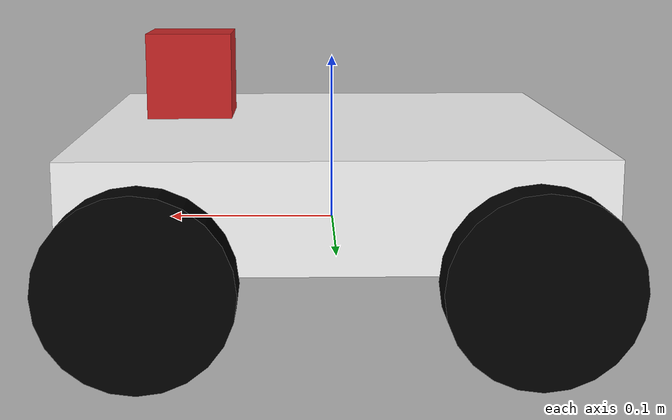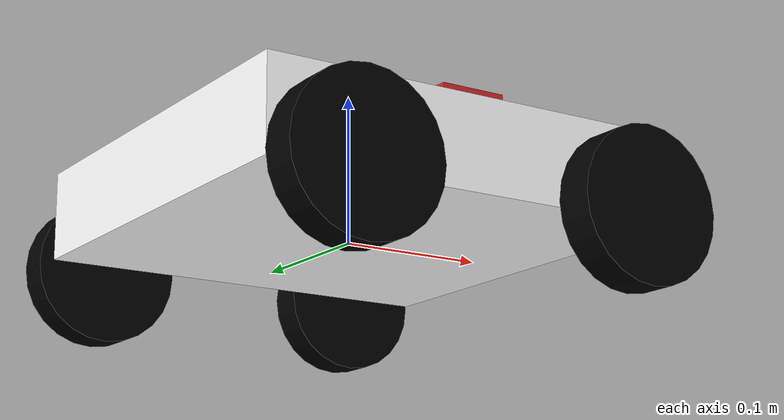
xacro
<?xml version="1.0"?>
<robot name="tetrix" xmlns:xacro="http://www.ros.org/wiki/xacro">
    <!-- Import all Gazebo-customization elements, including Gazebo colors -->
    <xacro:include filename="$(find description)/urdf/robot_gazebo.urdf" />
    <!-- Size of square 'camera' box -->
    <xacro:property name="camera_link" value="0.05" />

    <link name="base_link">
        <visual>
            <geometry>
                <box size="0.288 0.288 0.06"/>
            </geometry>
            <origin xyz="0.0 0.0 0.03" rpy="0.0 0.0 0.0"/>
            <material name="white">
                <color rgba="1.0 1.0 1.0 1.0"/>
            </material>
        </visual>
        <collision>
            <geometry>
                <cylinder radius="0.05" length="0.025"/>
            </geometry>
            <origin xyz="0.0 0.0 0.0" rpy="1.5708 0.0 0.0"/>
        </collision>
        <inertial>
            <mass value="30"/>
            <!--Calculate inertia matrix -->
            <inertia ixx="4624.522752" ixy="-76.634491e-6" ixz="-0.210200359375" iyy="8562.169856" iyz="-83.146664" izz="4164.323584"/>
        </inertial>
    </link>

    <link name="left_front_wheel">
        <visual>
            <geometry>
                <cylinder radius="0.05" length="0.025"/>
            </geometry>
            <origin xyz="0.0 0.0 0.0" rpy="1.5708 0.0 0.0"/>
            <material name="black">
                <color rgba="0.0 0.0 0.0 1.0"/>
            </material>
        </visual>
        <collision>
            <geometry>
                <cylinder radius="0.05" length="0.025"/>
            </geometry>
            <origin xyz="0.0 0.0 0.0" rpy="1.5708 0.0 0.0"/>
        </collision>
        <inertial>
            <mass value="10"/>
            <!--Calculate inertia matrix -->
            <inertia ixx="173.190752" ixy="0.001082074829" ixz="-0.000100570656" iyy="95.845712" iyz="-0.006255677734" izz="95.856976"/>
        </inertial>
    </link>

    <link name="right_front_wheel">
        <visual>
            <geometry>
                <cylinder radius="0.05" length="0.025"/>
            </geometry>
            <origin xyz="0.0 0.0 0.0" rpy="1.5708 0.0 0.0"/>
            <material name="black">
                <color rgba="0.0 0.0 0.0 1.0"/>
            </material>
        </visual>
        <collision>
            <geometry>
                <cylinder radius="0.05" length="0.025"/>
            </geometry>
            <origin xyz="0.0 0.0 0.0" rpy="1.5708 0.0 0.0"/>
        </collision>
        <inertial>
            <mass value="10"/>
            <!--Calculate inertia matrix -->
            <inertia ixx="173.190752" ixy="0.001082074829" ixz="-0.000100570656" iyy="95.845712" iyz="-0.006255677734" izz="95.856976"/>
        </inertial>
    </link>

    <link name="right_back_wheel">
        <visual>
            <geometry>
                <cylinder radius="0.05" length="0.025"/>
            </geometry>
            <origin xyz="0.0 0.0 0.0" rpy="1.5708 0.0 0.0"/>
            <material name="black">
                <color rgba="0.0 0.0 0.0 1.0"/>
            </material>
        </visual>
        <collision>
            <geometry>
                <cylinder radius="0.05" length="0.025"/>
            </geometry>
            <origin xyz="0.0 0.0 0.0" rpy="1.5708 0.0 0.0"/>
        </collision>
        <inertial>
            <mass value="10"/>
            <!--Calculate inertia matrix -->
            <inertia ixx="173.190752" ixy="0.001082074829" ixz="-0.000100570656" iyy="95.845712" iyz="-0.006255677734" izz="95.856976"/>
        </inertial>
    </link>

    <link name="left_back_wheel">
        <visual>
            <geometry>
                <cylinder radius="0.05" length="0.025"/>
            </geometry>
            <origin xyz="-0.0 0.0 0.0" rpy="1.5708 0.0 0.0"/>
            <material name="black">
                <color rgba="0.0 0.0 0.0 1.0"/>
            </material>
        </visual>
        <collision>
            <geometry>
                <cylinder radius="0.05" length="0.025"/>
            </geometry>
            <origin xyz="0.0 0.0 0.0" rpy="1.5708 0.0 0.0"/>
        </collision>
        <inertial>
            <mass value="10"/>
            <!--Calculate inertia matrix -->
            <inertia ixx="173.190752" ixy="0.001082074829" ixz="-0.000100570656" iyy="95.845712" iyz="-0.006255677734" izz="95.856976"/>
        </inertial>
    </link>

    <!-- Camera -->
    <link name="camera_link">
        <collision>
            <origin xyz="0 0 0" rpy="0 0 0"/>
            <geometry>
                <box size="0.05 0.05 0.05"/>
            </geometry>
        </collision>

        <visual>
            <origin xyz="0 0 0" rpy="0 0 0"/>
            <geometry>
                <box size="0.05 0.05 0.05"/>
            </geometry>
            <material name="red"/>
        </visual>

        <inertial>
            <mass value="1e-5" />
            <origin xyz="0 0 0" rpy="0 0 0"/>
            <inertia ixx="1e-6" ixy="0" ixz="0" iyy="1e-6" iyz="0" izz="1e-6" />
        </inertial>
    </link>

    <joint name="base_to_left_front_wheel" type="continuous">
        <parent link="base_link"/>
        <child link="left_front_wheel"/>
        <axis xyz="0.0 1 0.0"/>
        <origin xyz="0.100 -0.1665 0.0"/>
    </joint>
    <joint name="base_to_right_front_wheel" type="continuous">
        <parent link="base_link"/>
        <child link="right_front_wheel"/>
        <axis xyz="0.0 1 0.0"/>
        <origin xyz="0.100 0.1665 0.0"/>
    </joint>
    <joint name="base_to_right_back_wheel" type="continuous">
        <parent link="base_link"/>
        <child link="right_back_wheel"/>
        <axis xyz="0.0 1 0.0"/>
        <origin xyz="-0.100 0.1665 0.0"/>
    </joint>
    <joint name="base_to_left_back_wheel" type="continuous">
        <parent link="base_link"/>
        <child link="left_back_wheel"/>
        <axis xyz="0.0 1 0.0"/>
        <origin xyz="-0.100 -0.1665 0.0"/>
    </joint>
    <!--Camera Joint-->
    <joint name="camera_joint" type="fixed">
        <axis xyz="0 1 0" />
        <origin xyz="0.085 0 0.09 " rpy="0 0 0"/>
        <parent link="base_link"/>
        <child link="camera_link"/>
    </joint>

    <!--Added on 6/2/20 -->
    <transmission name="tran1">
    <type>transmission_interface/SimpleTransmission</type>
    <joint name="base_to_right_back_wheel">
      <hardwareInterface>VelocityJointInterface</hardwareInterface>
    </joint>
    <actuator name="motor1">
      <hardwareInterface>EffortJointInterface</hardwareInterface>
      <hardwareInterface>VelocityJointInterface</hardwareInterface>
      <mechanicalReduction>1</mechanicalReduction>
    </actuator>
  </transmission>

  <transmission name="tran2">
    <type>transmission_interface/SimpleTransmission</type>
    <joint name="base_to_left_back_wheel">
      <hardwareInterface>EffortJointInterface</hardwareInterface>
      <hardwareInterface>VelocityJointInterface</hardwareInterface>
    </joint>
    <actuator name="motor2">
      <hardwareInterface>VelocityJointInterface</hardwareInterface>
      <mechanicalReduction>1</mechanicalReduction>
    </actuator>
  </transmission>
   <!--Added on 6/2/20 -->
</robot>
